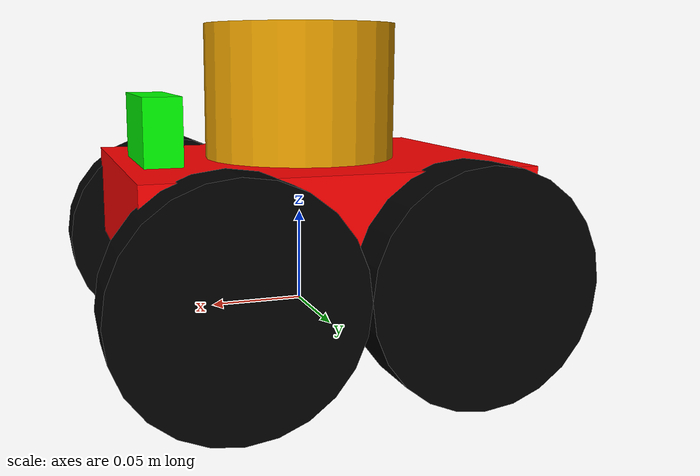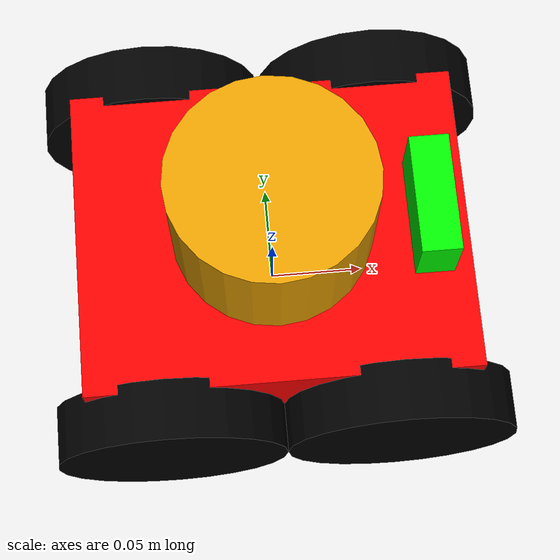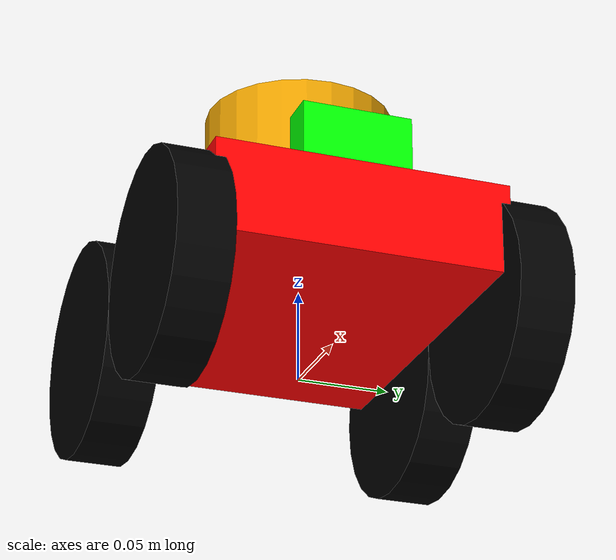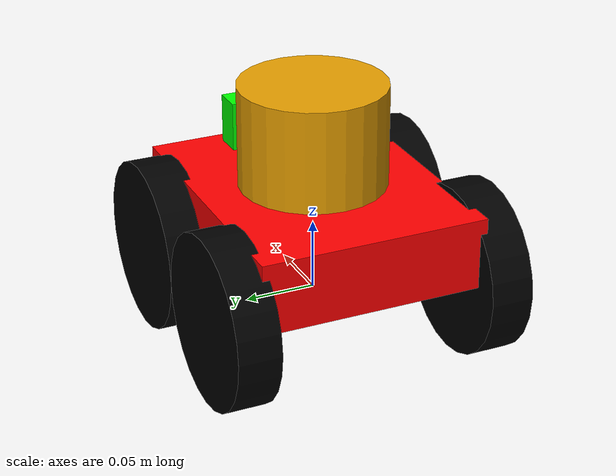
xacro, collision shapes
<?xml version="1.0"?>
<robot xmlns:xacro="http://www.ros.org/wiki/xacro" name="bot">
<xacro:arg name="gpu" default="false"/>
<xacro:property name="gpu" value="$(arg gpu)" />
<xacro:arg name="organize_cloud" default="false"/>
<xacro:property name="organize_cloud" value="$(arg organize_cloud)" />
<!-- 基础部分 base_link -->
<xacro:include filename="$(find bot_description)/urdf/bot/base.urdf.xacro"/>
<!-- 传感器部分 -->
<xacro:include filename="$(find bot_description)/urdf/bot/sensor/camera.urdf.xacro"/>
<!-- 执行器部分 -->
<xacro:include filename="$(find bot_description)/urdf/bot/actuator/wheel.urdf.xacro"/>
<!-- 插件 -->
<xacro:include filename="$(find bot_description)/urdf/bot/plugins/gazebo_control_plugin.xacro"/>
<xacro:include filename="$(find bot_description)/urdf/bot/plugins/gazebo_sensor_plugin.xacro"/>

<xacro:base_xacro x="0.20" y="0.16" z="0.05" />

<xacro:camera_xacro xyz="0.08 0.0 0.04" />

<xacro:wheel_xacro wheel_name="front_left_wheel" xyz="0.06 0.09 -0.03" />
<xacro:wheel_xacro wheel_name="front_right_wheel" xyz="0.06 -0.09 -0.03" />
<xacro:wheel_xacro wheel_name="back_left_wheel" xyz="-0.06 0.09 -0.03" />
<xacro:wheel_xacro wheel_name="back_right_wheel" xyz="-0.06 -0.09 -0.03" />

<xacro:gazebo_control_plugin />
<xacro:gazebo_sensor_plugin />

<xacro:include filename="$(find velodyne_description)/urdf/VLP-16.urdf.xacro"/>
<xacro:VLP-16 parent="base_link" name="velodyne" topic="/velodyne_points" hz="10" samples="440" gpu="${gpu}">
    <origin xyz="0 0 0.025" rpy="0 0 0" />
</xacro:VLP-16>

</robot>

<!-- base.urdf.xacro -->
<robot xmlns:xacro="http://www.ros.org/wiki/xacro" >
    <xacro:include filename="$(find bot_description)/urdf/bot/common_inertia.xacro"/>

    <xacro:macro name="base_xacro" params="x y z">
        <!-- 机器人的身体部分 -->
        <link name="base_link">
            <!-- 部件的外观描述 -->
            <visual>
                <!-- 沿着自己几何中心的偏移和旋转量 -->
                <origin xyz="0.0 0.0 0.0" rpy="0.0 0.0 0.0"/>
                <!-- 几何形状 -->
                <geometry>
                    <box size="${x} ${y} ${z}"/>
                </geometry>
                <!-- 材质颜色 -->
                <material name="red">
                    <color rgba="1.0 0.0 0.0 1.0"/>
                </material>
            </visual>
            <collision>
               <!-- 沿着自己几何中心的偏移和旋转量 -->
                <origin xyz="0.0 0.0 0.0" rpy="0.0 0.0 0.0"/>
                <!-- 几何形状 -->
                <geometry>
                    <box size="${x} ${y} ${z}"/>
                </geometry>
                <!-- 材质颜色 -->
                <material name="red">
                    <color rgba="1.0 0.0 0.0 1.0"/>
                </material>
            </collision>

            <xacro:box_inertia m="1.0" w="${x}" h="${y}" d="${z}" />
        </link>

        <!-- 机器人的虚拟部件，对地面的投影 -->
        <link name="base_footprint" />

        <joint name="base_link_joint" type="fixed">
            <origin xyz="0.0 0.0 ${z/2.0+0.032-0.001}" rpy="0.0 0.0 0.0"/>
            <parent link="base_footprint"/>
            <child link="base_link"/>
        </joint>
        <gazebo reference='base_link'>
            <material>Gazebo/Red</material>
        </gazebo>
    </xacro:macro>

</robot>

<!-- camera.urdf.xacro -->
<robot xmlns:xacro="http://www.ros.org/wiki/xacro">
    <xacro:include filename="$(find bot_description)/urdf/bot/common_inertia.xacro"/>
    <xacro:macro name="camera_xacro" params="xyz">
         <!-- 机器人的相机部件 -->
        <link name="camera_link">
            <!-- 部件的外观描述 -->
            <visual>
                <!-- 沿着自己几何中心的偏移和旋转量 -->
                <origin xyz="0.0 0.0 0.0" rpy="0.0 0.0 0.0"/>
                <!-- 几何形状 -->
                <geometry>
                    <box size="0.02 0.06 0.04"/>
                </geometry>
                <!-- 材质颜色 -->
                <material name="green">
                    <color rgba="0.0 1.0 0.0 1.0"/>
                </material>
            </visual>
            <collision>
                <!-- 沿着自己几何中心的偏移和旋转量 -->
                <origin xyz="0.0 0.0 0.0" rpy="0.0 0.0 0.0"/>
                <!-- 几何形状 -->
                <geometry>
                    <box size="0.02 0.06 0.04"/>
                </geometry>
                <!-- 材质颜色 -->
                <material name="green">
                    <color rgba="0.0 1.0 0.0 1.0"/>
                </material>
            </collision>

            <xacro:box_inertia m="0.1" w="0.02" h="0.06" d="0.04" />
        </link>

        <link name="camera_optical_link"></link>

        <!-- 机器人的关节，用于组合机器人的部件 -->
        <joint name="camera_joint" type="fixed">
            <origin xyz="${xyz}" rpy="0.0 0.0 0.0"/>
            <parent link="base_link"/>
            <child link="camera_link"/>
        </joint>

        <!-- 机器人的关节，用于组合机器人的部件 -->
        <joint name="camera_optical_joint" type="fixed">
            <origin xyz="0 0 0" rpy="${-pi/2} 0.0 ${-pi/2}"/>
            <parent link="camera_link"/>
            <child link="camera_optical_link"/>
        </joint>

        <gazebo reference='camera_link'>
            <material>Gazebo/Yellow</material>
        </gazebo>
    </xacro:macro>

</robot>

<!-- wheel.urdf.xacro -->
<robot xmlns:xacro="http://www.ros.org/wiki/xacro" >
    <xacro:include filename="$(find bot_description)/urdf/bot/common_inertia.xacro"/>
    <xacro:macro name="wheel_xacro" params="wheel_name xyz">
        <!-- 机器人的轮子 -->
        <link name="${wheel_name}_link">
            <!-- 部件的外观描述 -->
            <visual>
                <!-- 沿着自己几何中心的偏移和旋转量 -->
                <origin xyz="0.0 0.0 0.0" rpy="1.57079 0.0 0.0"/>
                <!-- 几何形状 -->
                <geometry>
                    <cylinder radius="0.060" length="0.03"/>
                </geometry>
                <!-- 材质颜色 -->
                <material name="black">
                    <color rgba="0.0 0.0 0.0 1.0"/>
                </material>
            </visual>
            <collision>
               <!-- 沿着自己几何中心的偏移和旋转量 -->
                <origin xyz="0.0 0.0 0.0" rpy="1.57079 0.0 0.0"/>
                <!-- 几何形状 -->
                <geometry>
                    <cylinder radius="0.060" length="0.03"/>
                </geometry>
                <!-- 材质颜色 -->
                <material name="black">
                    <color rgba="0.0 0.0 0.0 1.0"/>
                </material>
            </collision>
            <xacro:cylinder_inertia m="0.05" r="0.060" h="0.03" />
        </link>

        <!-- 机器人的关节，用于组合机器人的部件 -->
        <joint name="${wheel_name}_joint" type="continuous">
            <origin xyz="${xyz}" rpy="0.0 0.0 0.0"/>
            <parent link="base_link"/>
            <child link="${wheel_name}_link"/>
            <axis xyz="0.0 1.0 0.0"/>
        </joint>

        <gazebo reference='${wheel_name}_link'>
            <material>Gazebo/Black</material>
        </gazebo>

        <!-- mu1静,mu2动，kp 刚度系数 kd 阻尼系数 -->
        <gazebo reference="${wheel_name}_link">
            <mu1>0.0</mu1>
            <mu2>0.0</mu2>
            <kp>20000.0</kp>
            <kd>10.0</kd>
            <minDepth>0.001</minDepth>
            <maxVel>100.0</maxVel>
        </gazebo>

    </xacro:macro>

</robot>

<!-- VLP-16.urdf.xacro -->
<robot xmlns:xacro="http://www.ros.org/wiki/xacro" name="VLP-16">
  <xacro:property name="M_PI" value="3.1415926535897931" />
  <xacro:macro name="VLP-16" params="*origin is_sim:=true parent:=base_link name:=velodyne tf_prefix:='' topic:=/velodyne_points organize_cloud:=false hz:=10 lasers:=16 samples:=1875 collision_range:=0.3 min_range:=0.0 max_range:=100.0 noise:=0.008 min_angle:=-${M_PI} max_angle:=${M_PI} gpu:=false">

    <joint name="${name}_base_mount_joint" type="fixed">
      <xacro:insert_block name="origin" />
      <parent link="${parent}"/>
      <child link="${name}_base_link"/>
    </joint>

    <link name="${name}_base_link">
      <inertial>
        <mass value="0.83"/>
        <origin xyz="0 0 0.03585"/>
        <inertia ixx="${(0.83 * (3.0*0.0516*0.0516 + 0.0717*0.0717)) / 12.0}" ixy="0" ixz="0"
          iyy="${(0.83 * (3.0*0.0516*0.0516 + 0.0717*0.0717)) / 12.0}" iyz="0"
          izz="${0.5 * 0.83 * (0.0516*0.0516)}"/>
      </inertial>
      <visual>
        <geometry>
          <mesh filename="package://velodyne_description/meshes/VLP16_base_1.dae" />
        </geometry>
      </visual>
      <visual>
        <geometry>
          <mesh filename="package://velodyne_description/meshes/VLP16_base_2.dae" />
        </geometry>
      </visual>
      <collision>
        <origin rpy="0 0 0" xyz="0 0 0.03585"/>
        <geometry>
          <cylinder radius="0.0516" length="0.0717"/>
        </geometry>
      </collision>
    </link>

    <joint name="${name}_base_scan_joint" type="fixed" >
      <origin xyz="0 0 0.0377" rpy="0 0 0" />
      <parent link="${name}_base_link" />
      <child link="${name}"/>
    </joint>

    <link name="${name}">
      <inertial>
        <mass value="0.01"/>
        <origin xyz="0 0 0"/>
        <inertia ixx="1e-7" ixy="0" ixz="0" iyy="1e-7" iyz="0" izz="1e-7"/>
      </inertial>
      <visual>
        <origin xyz="0 0 -0.0377" />
        <geometry>
          <mesh filename="package://velodyne_description/meshes/VLP16_scan.dae" />
        </geometry>
      </visual>
      <collision>
        <geometry>
          <sphere radius="0"/>
        </geometry>
      </collision>
    </link>

    <!-- Gazebo requires the velodyne_gazebo_plugins package -->
    <xacro:if value="${is_sim}">
        <gazebo reference="${name}">
            <xacro:if value="${gpu}">
                <sensor type="gpu_ray" name="${name}-VLP16">
                <pose>0 0 0 0 0 0</pose>
                <visualize>false</visualize>
                <update_rate>${hz}</update_rate>
                <ray>
                    <scan>
                    <horizontal>
                        <samples>${samples}</samples>
                        <resolution>1</resolution>
                        <min_angle>${min_angle}</min_angle>
                        <max_angle>${max_angle}</max_angle>
                    </horizontal>
                    <vertical>
                        <samples>${lasers}</samples>
                        <resolution>1</resolution>
                        <min_angle>-${15.0*M_PI/180.0}</min_angle>
                        <max_angle> ${15.0*M_PI/180.0}</max_angle>
                    </vertical>
                    </scan>
                    <range>
                    <min>${collision_range}</min>
                    <max>${max_range+1}</max>
                    <resolution>0.001</resolution>
                    </range>
                    <noise>
                    <type>gaussian</type>
                    <mean>0.0</mean>
                    <stddev>0.0</stddev>
                    </noise>
                </ray>
                <plugin name="gazebo_ros_laser_controller" filename="libgazebo_ros_velodyne_laser.so">
                    <ros>
                    <namespace>/${name}</namespace>
                    <remapping>~/out:=${topic}</remapping>
                    </ros>
                    <tf_prefix>${tf_prefix}</tf_prefix>
                    <frame_name>${name}</frame_name>
                    <organize_cloud>${organize_cloud}</organize_cloud>
                    <min_range>${min_range}</min_range>
                    <max_range>${max_range}</max_range>
                    <gaussian_noise>${noise}</gaussian_noise>
                </plugin>
                </sensor>
            </xacro:if>
            <xacro:unless value="${gpu}">
                <sensor type="ray" name="${name}-VLP16">
                <pose>0 0 0 0 0 0</pose>
                <visualize>false</visualize>
                <update_rate>${hz}</update_rate>
                <ray>
                    <scan>
                    <horizontal>
                        <samples>${samples}</samples>
                        <resolution>1</resolution>
                        <min_angle>${min_angle}</min_angle>
                        <max_angle>${max_angle}</max_angle>
                    </horizontal>
                    <vertical>
                        <samples>${lasers}</samples>
                        <resolution>1</resolution>
                        <min_angle>-${15.0*M_PI/180.0}</min_angle>
                        <max_angle> ${15.0*M_PI/180.0}</max_angle>
                    </vertical>
                    </scan>
                    <range>
                    <min>${collision_range}</min>
                    <max>${max_range+1}</max>
                    <resolution>0.001</resolution>
                    </range>
                    <noise>
                    <type>gaussian</type>
                    <mean>0.0</mean>
                    <stddev>0.0</stddev>
                    </noise>
                </ray>
                <plugin name="gazebo_ros_laser_controller" filename="libgazebo_ros_velodyne_laser.so">
                    <ros>
                    <namespace>/${name}</namespace>
                    <remapping>~/out:=${topic}</remapping>
                    </ros>
                    <tf_prefix>${tf_prefix}</tf_prefix>
                    <frame_name>${name}</frame_name>
                    <organize_cloud>${organize_cloud}</organize_cloud>
                    <min_range>${min_range}</min_range>
                    <max_range>${max_range}</max_range>
                    <gaussian_noise>${noise}</gaussian_noise>
                </plugin>
                </sensor>
            </xacro:unless>
        </gazebo>
    </xacro:if>

  </xacro:macro>
</robot>
